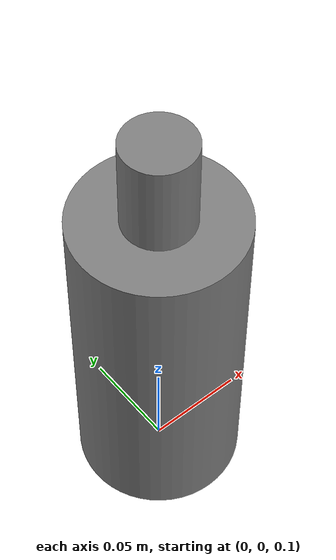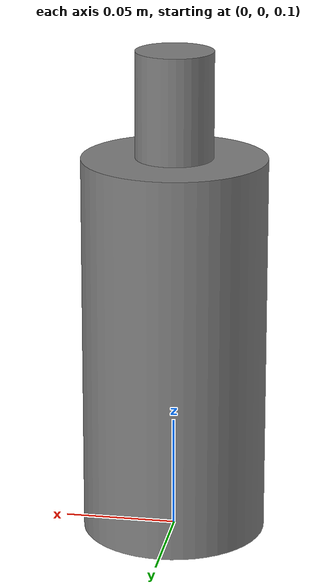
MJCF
<mujoco model="test_bottle">
  <!-- generated by tools/make_object.py from fake_bottle.glb -->
  <default>
    <default class="visual">
      <geom group="2" contype="0" conaffinity="0" density="0"/>
    </default>
    <default class="collision">
      <geom group="3" condim="4" solref="0.004 1"/>
    </default>
  </default>

  <asset>
    <mesh name="test_bottle_visual" file="visual.obj"/>
    <mesh name="test_bottle_c0" file="collision_00.obj"/>
    <mesh name="test_bottle_c1" file="collision_01.obj"/>
    <mesh name="test_bottle_c2" file="collision_02.obj"/>
    <mesh name="test_bottle_c3" file="collision_03.obj"/>
  </asset>

  <worldbody>
    <body name="test_bottle" pos="0 0 0.1">
      <freejoint/>
      <inertial pos="0 0 0.0919" mass="0.5000"
                diaginertia="0.001666 0.001666 0.000404"/>
      <geom type="mesh" mesh="test_bottle_visual" class="visual"/>
      <geom type="mesh" mesh="test_bottle_c0" class="collision" friction="0.8 0.01 0.001"/>
      <geom type="mesh" mesh="test_bottle_c1" class="collision" friction="0.8 0.01 0.001"/>
      <geom type="mesh" mesh="test_bottle_c2" class="collision" friction="0.8 0.01 0.001"/>
      <geom type="mesh" mesh="test_bottle_c3" class="collision" friction="0.8 0.01 0.001"/>
    </body>
  </worldbody>
</mujoco>
